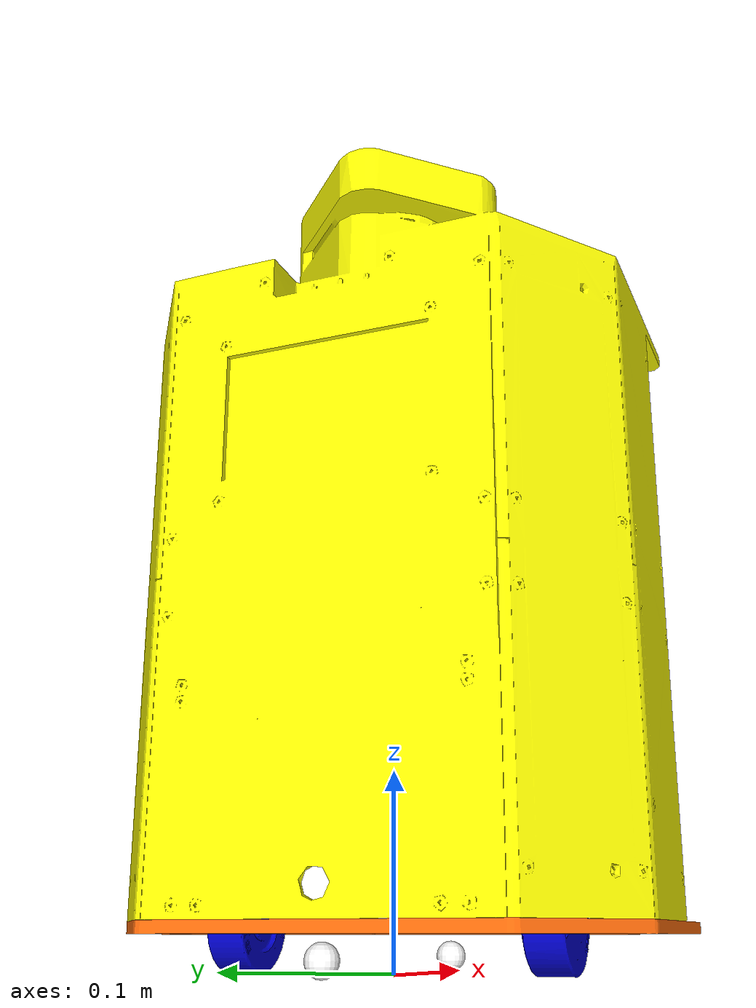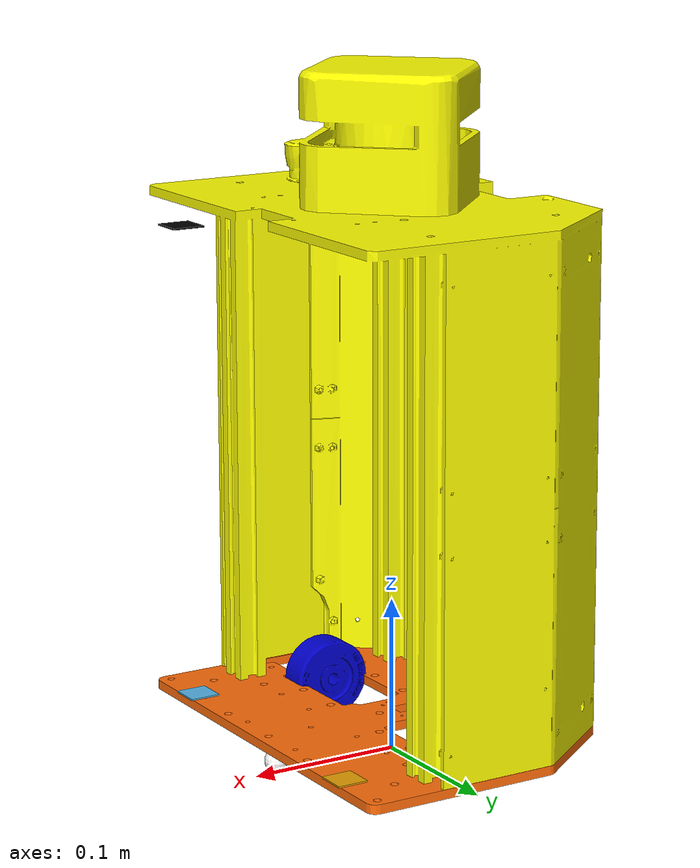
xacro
<?xml version="1.0"?>
<robot name="robotbleu"
  xmlns:xacro="http://ros.org/wiki/xacro">

    <xacro:include filename="colors.xacro" />
    <xacro:include filename="inertial.xacro" />

    <xacro:arg name="display_meshes" default="True"/>

    <xacro:property name="chassis_length" value="0.2"/>
    <xacro:property name="chassis_width" value="0.275"/>
    <xacro:property name="chassis_height" value="0.006"/>
    <xacro:property name="chassis_mass" value="1.0"/>

    <xacro:property name="carter_length" value="0.17"/>
    <xacro:property name="carter_width" value="0.275"/>
    <xacro:property name="carter_height" value="0.33"/>
    <xacro:property name="carter_mass" value="0.1"/>
    <xacro:property name="carter_offset_x" value="0.045"/>

    <xacro:property name="wheel_radius" value="0.0254"/>
    <xacro:property name="wheel_thickness" value="0.018"/>
    <xacro:property name="wheel_mass" value="0.05"/>
    <xacro:property name="wheel_offset_x" value="0.0"/>
    <xacro:property name="wheel_offset_y" value="0.08316"/>
    <xacro:property name="wheel_offset_z" value="0.0"/>

    <xacro:property name="caster_wheel_radius" value="0.008"/>
    <xacro:property name="caster_wheel_mass" value="0.01"/>
    <xacro:property name="caster_wheel_offset_x" value="0.085"/>
    <xacro:property name="caster_wheel_offset_z" value="${wheel_offset_z - wheel_radius + caster_wheel_radius}"/>

    <xacro:property name="lidar_height" value="0.37733"/>

    <!-- BASE LINK -->
    <link name="base_link">
    </link>

    <!-- BASE_FOOTPRINT LINK -->
    <joint name="base_footprint_joint" type="fixed">
        <parent link="base_link"/>
        <child link="base_footprint"/>
        <origin xyz="0.0 0.0 0" rpy="0 0 0"/>
    </joint>

    <link name="base_footprint">
    </link>

    <!-- CHASSIS LINK -->
    <joint name="chassis_joint" type="fixed">
        <parent link="base_link"/>
        <child link="chassis"/>
        <origin xyz="${-wheel_offset_x} 0 ${wheel_radius-wheel_offset_z}"/>
    </joint>

    <link name="chassis">
        <visual>
            <xacro:if value="$(arg display_meshes)">
                <origin xyz="0 0 ${-chassis_height/2}" rpy="0 0 ${pi}"/>
                <geometry>
                    <mesh filename="package://jrb_description/urdf/meshes/base.STL" />
                </geometry>
            </xacro:if>
            <xacro:unless value="$(arg display_meshes)">
                <origin xyz="0 0 ${-chassis_height/2}"/>
                <geometry>
                    <box size="${chassis_length} ${chassis_width} ${chassis_height}"/>
                </geometry>
            </xacro:unless>
            <material name="orange"/>
        </visual>
        <collision>
            <origin xyz="0 0 ${-chassis_height/2}"/>
            <geometry>
                <box size="${chassis_length} ${chassis_width} ${chassis_height}"/>
            </geometry>
        </collision>
        <xacro:inertial_box mass="0.5" x="${chassis_length}" y="${chassis_width}" z="${chassis_height}">
            <origin xyz="0 0 ${chassis_height/2}" rpy="0 0 0"/>
        </xacro:inertial_box>
    </link>

    <!-- CARTER LINK -->
    <joint name="carter_joint" type="fixed">
        <parent link="chassis"/>
        <child link="carter"/>
        <origin xyz="0 0 0"/>
    </joint>

    <link name="carter">
        <visual>
            <xacro:if value="$(arg display_meshes)">
                <geometry>
                    <mesh filename="package://jrb_description/urdf/meshes/carter.STL" />
                </geometry>
            </xacro:if>
            <xacro:unless value="$(arg display_meshes)">
                <origin xyz="${-(chassis_length-carter_length)/2} 0 ${carter_height/2}"/>
                <geometry>
                    <box size="${carter_length} ${carter_width} ${carter_height}"/>
                </geometry>
            </xacro:unless>
            <material name="yellow"/>
        </visual>
        <collision>
            <origin xyz="${-(chassis_length-carter_length)/2} 0 ${carter_height/2}"/>
            <geometry>
                <box size="${carter_length} ${carter_width} ${carter_height}"/>
            </geometry>
        </collision>
        <xacro:inertial_box mass="0.5" x="${carter_length}" y="${carter_width}" z="${carter_height}">
            <origin xyz="0 0 ${carter_height/2}" rpy="0 0 0"/>
        </xacro:inertial_box>
    </link>

    <!-- LEFT WHEEL LINK -->
    <joint name="left_wheel_joint" type="continuous">
        <parent link="chassis"/>
        <child link="left_wheel"/>
        <origin xyz="0 ${wheel_offset_y} ${wheel_offset_z}" rpy="-${pi/2} 0 0" />
        <axis xyz="0 0 1"/>
    </joint>

    <link name="left_wheel">
        <visual>
            <xacro:if value="$(arg display_meshes)">
                <origin xyz="0 0 0" rpy="${pi/2} 0 0"/>
                <geometry>
                    <mesh filename="package://jrb_description/urdf/meshes/roue.STL" />
                </geometry>
                <material name="blue"/>
            </xacro:if>
            <xacro:unless value="$(arg display_meshes)">
                <geometry>
                    <cylinder radius="${wheel_radius}" length="${wheel_thickness}"/>
                </geometry>
            </xacro:unless>
            <material name="blue"/>
        </visual>
        <collision>
            <geometry>
                <sphere radius="${wheel_radius}"/>
            </geometry>
        </collision>
        <xacro:inertial_cylinder mass="${wheel_mass}" length="${wheel_thickness}" radius="${wheel_radius}">
            <origin xyz="0 0 0" rpy="0 0 0"/>
        </xacro:inertial_cylinder>
    </link>

    <!-- RIGHT WHEEL LINK -->
    <joint name="right_wheel_joint" type="continuous">
        <parent link="chassis"/>
        <child link="right_wheel"/>
        <origin xyz="0 ${-wheel_offset_y} ${wheel_offset_z}" rpy="${pi/2} 0 0" />
        <axis xyz="0 0 -1"/>
    </joint>

    <link name="right_wheel">
        <visual>
            <xacro:if value="$(arg display_meshes)">
                <origin xyz="0 0 0" rpy="${pi/2} 0 0"/>
                <geometry>
                    <mesh filename="package://jrb_description/urdf/meshes/roue.STL" />
                </geometry>
                <material name="blue"/>
            </xacro:if>
            <xacro:unless value="$(arg display_meshes)">
                <geometry>
                    <cylinder radius="${wheel_radius}" length="${wheel_thickness}"/>
                </geometry>
            </xacro:unless>
            <material name="blue"/>
        </visual>
        <collision>
            <geometry>
                <sphere radius="${wheel_radius}"/>
            </geometry>
        </collision>
        <xacro:inertial_cylinder mass="${wheel_mass}" length="${wheel_thickness}" radius="${wheel_radius}">
            <origin xyz="0 0 0" rpy="0 0 0"/>
        </xacro:inertial_cylinder>
    </link>

    <!-- FRONT CASTER WHEEL LINK -->
    <joint name="front_caster_wheel_joint" type="fixed">
        <parent link="chassis"/>
        <child link="front_caster_wheel"/>
        <origin xyz="${caster_wheel_offset_x} 0 ${caster_wheel_offset_z}"/>
    </joint>

    <link name="front_caster_wheel">
        <visual>
            <geometry>
                <sphere radius="${caster_wheel_radius}"/>
            </geometry>
            <material name="white"/>
        </visual>
        <collision>
            <geometry>
                <sphere radius="${caster_wheel_radius}"/>
            </geometry>
        </collision>
        <xacro:inertial_sphere mass="${caster_wheel_mass}" radius="${caster_wheel_radius}">
            <origin xyz="0 0 0" rpy="0 0 0"/>
        </xacro:inertial_sphere>
    </link>

    <!-- BACK CASTER WHEEL LINK -->
    <joint name="back_caster_wheel_joint" type="fixed">
        <parent link="chassis"/>
        <child link="back_caster_wheel"/>
        <origin xyz="${-caster_wheel_offset_x} 0 ${caster_wheel_offset_z}"/>
    </joint>

    <link name="back_caster_wheel">
        <visual>
            <geometry>
                <sphere radius="${caster_wheel_radius}"/>
            </geometry>
            <material name="white"/>
        </visual>
        <collision>
            <geometry>
                <sphere radius="${caster_wheel_radius}"/>
            </geometry>
        </collision>
        <xacro:inertial_sphere mass="${caster_wheel_mass}" radius="${caster_wheel_radius}">
            <origin xyz="0 0 0" rpy="0 0 0"/>
        </xacro:inertial_sphere>
    </link>

    <!-- LEFT TAG LINK -->
    <joint name="left_tag_joint" type="fixed">
        <parent link="chassis"/>
        <child link="left_tag_link"/>
        <origin xyz="0.091 0.0925 0.0" rpy="0 0 0"/>
    </joint>

    <link name="left_tag_link">
        <visual>
            <origin xyz="0 0 0" rpy="0 0 0"/>
                <geometry>
                    <mesh filename="package://jrb_description/urdf/meshes/tag/tag_left.dae" />
                </geometry>
        </visual>
    </link>

    <!-- RIGHT TAG LINK -->
    <joint name="right_tag_joint" type="fixed">
        <parent link="chassis"/>
        <child link="right_tag_link"/>
        <origin xyz="0.091 -0.0925 0.0" rpy="0 0 0"/>
    </joint>

    <link name="right_tag_link">
        <visual>
            <origin xyz="0 0 0" rpy="0 0 0"/>
                <geometry>
                    <mesh filename="package://jrb_description/urdf/meshes/tag/tag_right.dae" />
                </geometry>
        </visual>
    </link>

    <xacro:include filename="lidar.xacro" />
    <xacro:include filename="camera.xacro" />

    <xacro:include filename="gazebo.xacro" />
    <xacro:include filename="gazebo_control.xacro" />
</robot>

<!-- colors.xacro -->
<robot xmlns:xacro="http://ros.org/wiki/xacro">
    <material name="black">
        <color rgba="0.0 0.0 0.0 1.0" />
    </material>

    <material name="dark">
        <color rgba="0.3 0.3 0.3 1.0" />
    </material>

    <material name="light_black">
        <color rgba="0.4 0.4 0.4 1.0" />
    </material>

    <material name="blue">
        <color rgba="0.0 0.0 0.8 1.0" />
    </material>

    <material name="green">
        <color rgba="0.0 0.8 0.0 1.0" />
    </material>

    <material name="grey">
        <color rgba="0.5 0.5 0.5 1.0" />
    </material>

    <material name="orange">
        <color rgba="1.0 0.4235 0.0392 1.0" />
    </material>

    <material name="brown">
        <color rgba="0.8706 0.8118 0.7647 1.0" />
    </material>

    <material name="red">
        <color rgba="0.8 0.0 0.0 1.0" />
    </material>

    <material name="white">
        <color rgba="1.0 1.0 1.0 1.0" />
    </material>

    <material name="yellow">
        <color rgba="1.0 1.0 0.0 1.0" />
    </material>
</robot>

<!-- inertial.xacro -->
<robot xmlns:xacro="http://www.ros.org/wiki/xacro">
    <!-- Specify some standard inertial calculations https://en.wikipedia.org/wiki/List_of_moments_of_inertia -->
    <!-- These make use of xacro's mathematical functionality -->

    <xacro:macro name="inertial_sphere" params="mass radius *origin">
        <inertial>
            <xacro:insert_block name="origin" />
            <mass value="${mass}" />
            <inertia ixx="${(2/5) * mass * (radius*radius)}" ixy="0.0" ixz="0.0"
                iyy="${(2/5) * mass * (radius*radius)}" iyz="0.0"
                izz="${(2/5) * mass * (radius*radius)}" />
        </inertial>
    </xacro:macro>

    <xacro:macro name="inertial_box" params="mass x y z *origin">
        <inertial>
            <xacro:insert_block name="origin" />
            <mass value="${mass}" />
            <inertia ixx="${(1/12) * mass * (y*y+z*z)}" ixy="0.0" ixz="0.0"
                iyy="${(1/12) * mass * (x*x+z*z)}" iyz="0.0"
                izz="${(1/12) * mass * (x*x+y*y)}" />
        </inertial>
    </xacro:macro>

    <xacro:macro name="inertial_cylinder" params="mass length radius *origin">
        <inertial>
            <xacro:insert_block name="origin" />
            <mass value="${mass}" />
            <inertia ixx="${(1/12) * mass * (3*radius*radius + length*length)}" ixy="0.0" ixz="0.0"
                iyy="${(1/12) * mass * (3*radius*radius + length*length)}" iyz="0.0"
                izz="${(1/2) * mass * (radius*radius)}" />
        </inertial>
    </xacro:macro>
</robot>

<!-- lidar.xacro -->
<robot xmlns:xacro="http://www.ros.org/wiki/xacro" >
    <joint name="laser_joint" type="fixed">
        <parent link="chassis"/>
        <child link="laser_link"/>
        <origin xyz="0 0 ${lidar_height}" rpy="0 0 ${radians(-90)}"/>
    </joint>

    <link name="laser_link">
        <xacro:unless value="$(arg display_meshes)">
            <visual>
                <origin xyz="0 0 -0.01" rpy="0 0 0"/>
                <geometry>
                    <cylinder radius="0.06" length="0.08"/>
                </geometry>
                <material name="red"/>
            </visual>
        </xacro:unless>
        <collision>
            <origin xyz="0 0 -0.01" rpy="0 0 0"/>
            <geometry>
                <cylinder radius="0.06" length="0.08"/>
            </geometry>
            <material name="red"/>
        </collision>
        <xacro:inertial_cylinder mass="0.1" length="0.08" radius="0.06">
            <origin xyz="0 0 0" rpy="0 0 0"/>
        </xacro:inertial_cylinder>
    </link>
</robot>

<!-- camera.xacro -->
<robot xmlns:xacro="http://www.ros.org/wiki/xacro" >

    <joint name="camera_joint" type="fixed">
        <parent link="chassis"/>
        <child link="camera_link"/>
        <origin xyz="0.1468 0.0 ${carter_height}" rpy="0 ${pi/2} 0"/>
    </joint>

    <link name="camera_link">
        <visual>
            <origin xyz="0 0 0"/>
            <geometry>
                <box size="0.001 0.02 0.02"/>
            </geometry>
            <material name="black"/>
        </visual>
    </link>

    <joint name="camera_optical_joint" type="fixed">
        <parent link="camera_link"/>
        <child link="camera_link_optical"/>
        <origin xyz="0 0 0" rpy="${-pi/2} 0 ${-pi/2}"/>
    </joint>

    <link name="camera_link_optical"></link>

</robot>
